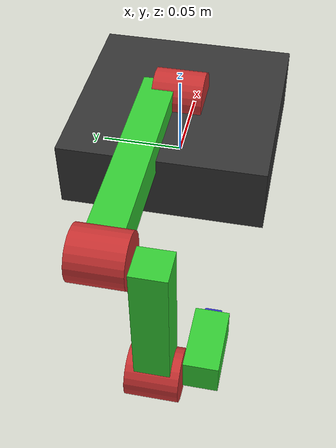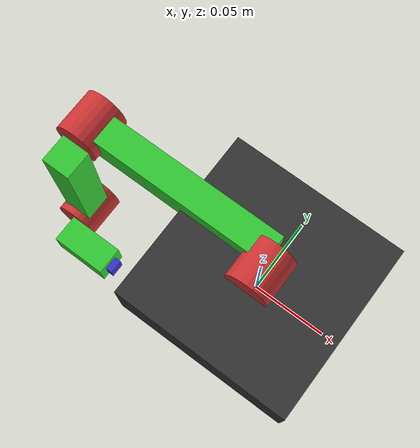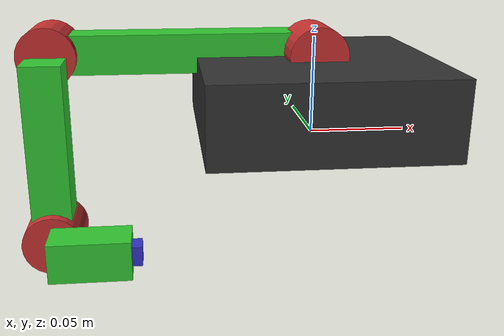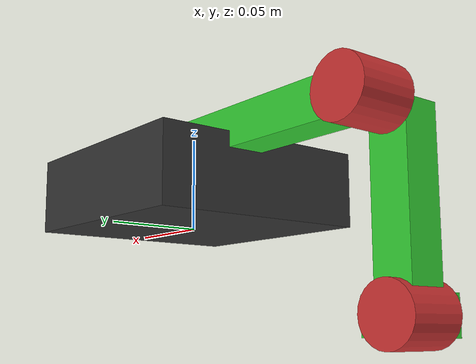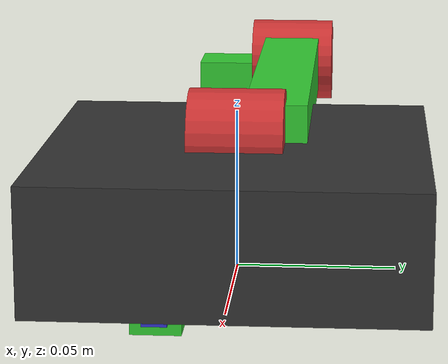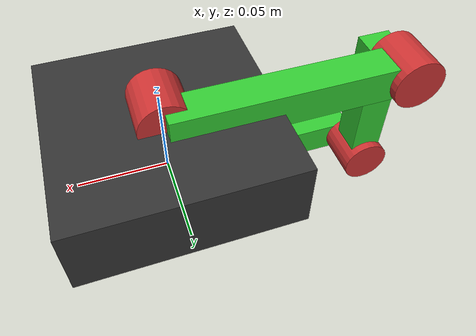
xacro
<?xml version="1.0"?>
<robot name="stm32_robot" xmlns:xacro="http://www.ros.org/wiki/xacro">

  <!-- Robot Parameters -->
  <xacro:property name="PI" value="3.14159265359"/>
  <xacro:property name="base_mass" value="0.5"/>
  <xacro:property name="base_size_x" value="0.12"/>
  <xacro:property name="base_size_y" value="0.12"/>
  <xacro:property name="base_size_z" value="0.04"/>
  <xacro:property name="base_height" value="0.02"/>

  <!-- Motor Parameters -->
  <xacro:property name="motor_mass" value="0.1"/>
  <xacro:property name="motor_radius" value="0.015"/>
  <xacro:property name="motor_length" value="0.03"/>

  <!-- Arm Parameters -->
  <xacro:property name="arm_1_mass" value="0.2"/>
  <xacro:property name="arm_1_length" value="0.135"/>
  <xacro:property name="arm_1_width" value="0.02"/>
  <xacro:property name="arm_1_height" value="0.02"/>
  <xacro:property name="arm_1_offset_y" value="0.012"/>

  <xacro:property name="arm_2_mass" value="0.15"/>
  <xacro:property name="arm_2_length" value="0.09"/>
  <xacro:property name="arm_2_width" value="0.02"/>
  <xacro:property name="arm_2_height" value="0.02"/>
  <xacro:property name="arm_2_offset_y" value="-0.025"/>

  <xacro:property name="arm_3_mass" value="0.08"/>
  <xacro:property name="arm_3_length" value="0.04"/>
  <xacro:property name="arm_3_width" value="0.02"/>
  <xacro:property name="arm_3_height" value="0.02"/>
  <xacro:property name="arm_3_offset_y" value="-0.025"/>

  <!-- End Effector Parameters -->
  <xacro:property name="end_effector_mass" value="0.05"/>
  <xacro:property name="end_effector_size" value="0.01"/>

  <!-- Joint Parameters -->
  <xacro:property name="joint_effort" value="10"/>
  <xacro:property name="joint_velocity" value="2"/>
  <xacro:property name="joint_lower_limit" value="0"/>
  <xacro:property name="joint_upper_limit" value="${PI}"/>

  <!-- Materials -->
  <material name="base_material">
    <color rgba="0.2 0.2 0.2 1.0"/>
  </material>

  <material name="motor_material">
    <color rgba="0.8 0.2 0.2 1.0"/>
  </material>

  <material name="arm_material">
    <color rgba="0.2 0.8 0.2 1.0"/>
  </material>

  <material name="end_effector_material">
    <color rgba="0.2 0.2 0.8 1.0"/>
  </material>

  <!-- Inertial Macro -->
  <xacro:macro name="box_inertial" params="mass x y z">
    <inertial>
      <mass value="${mass}"/>
      <inertia ixx="${mass * (y*y + z*z) / 12}" ixy="0" ixz="0"
               iyy="${mass * (x*x + z*z) / 12}" iyz="0"
               izz="${mass * (x*x + y*y) / 12}"/>
    </inertial>
  </xacro:macro>

  <xacro:macro name="cylinder_inertial" params="mass radius length">
    <inertial>
      <mass value="${mass}"/>
      <inertia ixx="${mass * (3*radius*radius + length*length) / 12}" ixy="0" ixz="0"
               iyy="${mass * (3*radius*radius + length*length) / 12}" iyz="0"
               izz="${mass * radius*radius / 2}"/>
    </inertial>
  </xacro:macro>

  <!-- Motor Link Macro -->
  <xacro:macro name="motor_link" params="name">
    <link name="${name}">
      <visual>
        <origin xyz="0 0 0" rpy="${PI/2} 0 0"/>
        <geometry>
          <cylinder radius="${motor_radius}" length="${motor_length}"/>
        </geometry>
        <material name="motor_material"/>
      </visual>
      <collision>
        <origin xyz="0 0 0" rpy="${PI/2} 0 0"/>
        <geometry>
          <cylinder radius="${motor_radius}" length="${motor_length}"/>
        </geometry>
      </collision>
      <xacro:cylinder_inertial mass="${motor_mass}" radius="${motor_radius}" length="${motor_length}"/>
    </link>
  </xacro:macro>

  <!-- Arm Link Macro -->
  <xacro:macro name="arm_link" params="name mass length width height offset_y">
    <link name="${name}">
      <visual>
        <origin xyz="0 ${offset_y} ${length/2}" rpy="0 0 0"/>
        <geometry>
          <box size="${width} ${height} ${length}"/>
        </geometry>
        <material name="arm_material"/>
      </visual>
      <collision>
        <origin xyz="0 ${offset_y} ${length/2}" rpy="0 0 0"/>
        <geometry>
          <box size="${width} ${height} ${length}"/>
        </geometry>
      </collision>
      <xacro:box_inertial mass="${mass}" x="${width}" y="${height}" z="${length}"/>
    </link>
  </xacro:macro>

  <!-- Revolute Joint Macro -->
  <xacro:macro name="revolute_joint" params="name parent child origin_xyz origin_rpy">
    <joint name="${name}" type="revolute">
      <parent link="${parent}"/>
      <child link="${child}"/>
      <origin xyz="${origin_xyz}" rpy="${origin_rpy}"/>
      <axis xyz="0 1 0"/>
      <limit lower="${joint_lower_limit}" upper="${joint_upper_limit}"
             effort="${joint_effort}" velocity="${joint_velocity}"/>
    </joint>
  </xacro:macro>

  <!-- Fixed Joint Macro -->
  <xacro:macro name="fixed_joint" params="name parent child origin_xyz origin_rpy">
    <joint name="${name}" type="fixed">
      <parent link="${parent}"/>
      <child link="${child}"/>
      <origin xyz="${origin_xyz}" rpy="${origin_rpy}"/>
    </joint>
  </xacro:macro>

  <!-- World Link -->
  <link name="world"/>

  <!-- Base Link -->
  <link name="base_link">
    <visual>
      <origin xyz="0 0 ${base_height}" rpy="0 0 0"/>
      <geometry>
        <box size="${base_size_x} ${base_size_y} ${base_size_z}"/>
      </geometry>
      <material name="base_material"/>
    </visual>
    <collision>
      <origin xyz="0 0 ${base_height}" rpy="0 0 0"/>
      <geometry>
        <box size="${base_size_x} ${base_size_y} ${base_size_z}"/>
      </geometry>
    </collision>
    <xacro:box_inertial mass="${base_mass}" x="${base_size_x}" y="${base_size_y}" z="${base_size_z}"/>
  </link>

  <!-- Motor Links -->
  <xacro:motor_link name="link_1"/>
  <xacro:motor_link name="link_2"/>
  <xacro:motor_link name="link_3"/>

  <!-- Arm Links -->
  <xacro:arm_link name="arm_1" mass="${arm_1_mass}" length="${arm_1_length}"
                  width="${arm_1_width}" height="${arm_1_height}" offset_y="${arm_1_offset_y}"/>

  <xacro:arm_link name="arm_2" mass="${arm_2_mass}" length="${arm_2_length}"
                  width="${arm_2_width}" height="${arm_2_height}" offset_y="${arm_2_offset_y}"/>

  <xacro:arm_link name="arm_3" mass="${arm_3_mass}" length="${arm_3_length}"
                  width="${arm_3_width}" height="${arm_3_height}" offset_y="${arm_3_offset_y}"/>

  <!-- End Effector Link -->
  <link name="end_effector">
    <visual>
      <origin xyz="0 0 0" rpy="0 0 0"/>
      <geometry>
        <box size="${end_effector_size} ${end_effector_size} ${end_effector_size}"/>
      </geometry>
      <material name="end_effector_material"/>
    </visual>
    <collision>
      <origin xyz="0 0 ${end_effector_size}" rpy="0 0 0"/>
      <geometry>
        <box size="${end_effector_size} ${end_effector_size} ${end_effector_size}"/>
      </geometry>
    </collision>
    <xacro:box_inertial mass="${end_effector_mass}" x="${end_effector_size}" y="${end_effector_size}" z="${end_effector_size}"/>
  </link>

  <!-- Joints -->
  <!-- Fixed joint connecting world to base_link -->
  <xacro:fixed_joint name="world_to_base" parent="world" child="base_link"
                     origin_xyz="0 0 0" origin_rpy="0 0 0"/>

  <!-- Joint 1: Base to Motor 1 -->
  <xacro:revolute_joint name="joint_1" parent="base_link" child="link_1"
                        origin_xyz="0 0 0.042" origin_rpy="0 ${-PI/2} 0"/>

  <!-- Fixed joint: Motor 1 to Arm 1 -->
  <xacro:fixed_joint name="joint_1_to_arm" parent="link_1" child="arm_1"
                     origin_xyz="0 0 0" origin_rpy="0 0 0"/>

  <!-- Joint 2: Arm 1 to Motor 2 -->
  <xacro:revolute_joint name="joint_2" parent="arm_1" child="link_2"
                        origin_xyz="0 ${arm_1_offset_y} ${arm_1_length}" origin_rpy="0 ${-PI/2} 0"/>

  <!-- Fixed joint: Motor 2 to Arm 2 -->
  <xacro:fixed_joint name="joint_2_to_arm" parent="link_2" child="arm_2"
                     origin_xyz="0 0 0" origin_rpy="0 0 0"/>

  <!-- Joint 3: Arm 2 to Motor 3 -->
  <xacro:revolute_joint name="joint_3" parent="arm_2" child="link_3"
                        origin_xyz="0 ${arm_2_offset_y} ${arm_2_length}" origin_rpy="0 ${-PI/2} 0"/>

  <!-- Fixed joint: Motor 3 to Arm 3 -->
  <xacro:fixed_joint name="joint_3_to_arm" parent="link_3" child="arm_3"
                     origin_xyz="0 0 0" origin_rpy="0 0 0"/>

  <!-- Fixed joint: Arm 3 to End Effector -->
  <xacro:fixed_joint name="joint_3_to_end" parent="arm_3" child="end_effector"
                     origin_xyz="0 ${arm_3_offset_y} ${arm_3_length}" origin_rpy="0 0 0"/>

</robot>
